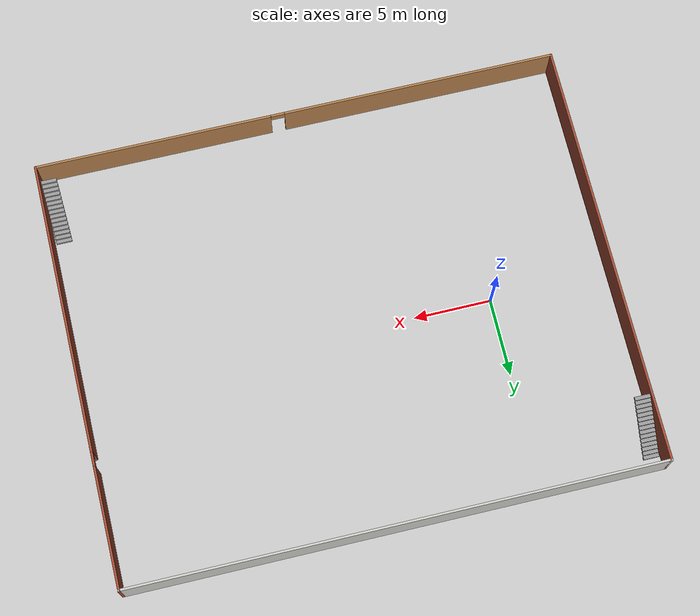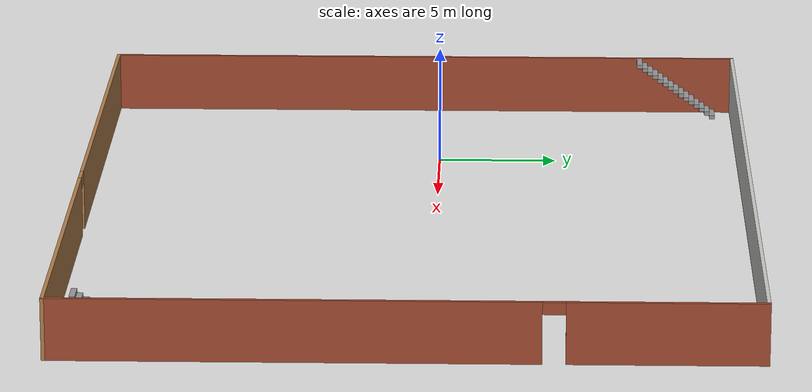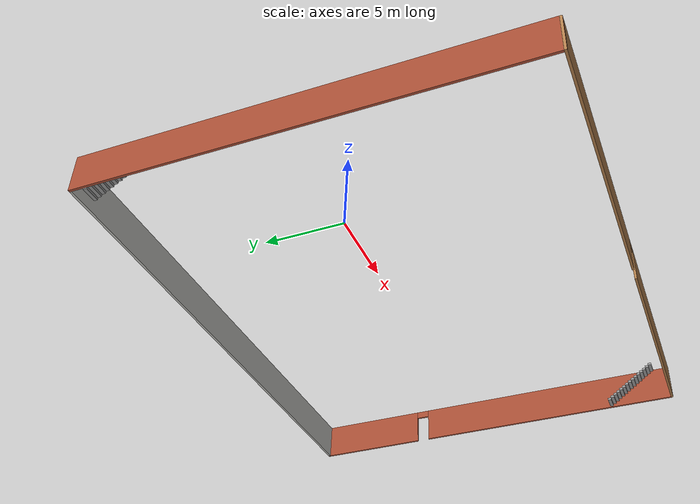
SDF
<?xml version='1.0'?>
<sdf version='1.7'>
  <model name='warehouse_small'>
    <pose>9.32387 -0.839581 0 0 -0 0</pose>
    <link name='Stairs_0'>
      <visual name='Stairs_0_Visual_0'>
        <pose>-16.4157 12.9249 0.083333 0 -0 0</pose>
        <geometry>
          <box>
            <size>1 0.233333 0.166667</size>
          </box>
        </geometry>
        <material>
          <script>
            <uri>file://media/materials/scripts/gazebo.material</uri>
            <name>Gazebo/Grey</name>
          </script>
          <ambient>1 1 1 1</ambient>
        </material>
        <meta>
          <layer>0</layer>
        </meta>
      </visual>
      <collision name='Stairs_0_Collision_0'>
        <geometry>
          <box>
            <size>1 0.233333 0.166667</size>
          </box>
        </geometry>
        <pose>-16.4157 12.9249 0.083333 0 -0 0</pose>
      </collision>
      <visual name='Stairs_0_Visual_1'>
        <pose>-16.4157 12.6916 0.25 0 -0 0</pose>
        <geometry>
          <box>
            <size>1 0.233333 0.166667</size>
          </box>
        </geometry>
        <material>
          <script>
            <uri>file://media/materials/scripts/gazebo.material</uri>
            <name>Gazebo/Grey</name>
          </script>
          <ambient>1 1 1 1</ambient>
        </material>
        <meta>
          <layer>0</layer>
        </meta>
      </visual>
      <collision name='Stairs_0_Collision_1'>
        <geometry>
          <box>
            <size>1 0.233333 0.166667</size>
          </box>
        </geometry>
        <pose>-16.4157 12.6916 0.25 0 -0 0</pose>
      </collision>
      <visual name='Stairs_0_Visual_2'>
        <pose>-16.4157 12.4583 0.416667 0 -0 0</pose>
        <geometry>
          <box>
            <size>1 0.233333 0.166667</size>
          </box>
        </geometry>
        <material>
          <script>
            <uri>file://media/materials/scripts/gazebo.material</uri>
            <name>Gazebo/Grey</name>
          </script>
          <ambient>1 1 1 1</ambient>
        </material>
        <meta>
          <layer>0</layer>
        </meta>
      </visual>
      <collision name='Stairs_0_Collision_2'>
        <geometry>
          <box>
            <size>1 0.233333 0.166667</size>
          </box>
        </geometry>
        <pose>-16.4157 12.4583 0.416667 0 -0 0</pose>
      </collision>
      <visual name='Stairs_0_Visual_3'>
        <pose>-16.4157 12.2249 0.583333 0 -0 0</pose>
        <geometry>
          <box>
            <size>1 0.233333 0.166667</size>
          </box>
        </geometry>
        <material>
          <script>
            <uri>file://media/materials/scripts/gazebo.material</uri>
            <name>Gazebo/Grey</name>
          </script>
          <ambient>1 1 1 1</ambient>
        </material>
        <meta>
          <layer>0</layer>
        </meta>
      </visual>
      <collision name='Stairs_0_Collision_3'>
        <geometry>
          <box>
            <size>1 0.233333 0.166667</size>
          </box>
        </geometry>
        <pose>-16.4157 12.2249 0.583333 0 -0 0</pose>
      </collision>
      <visual name='Stairs_0_Visual_4'>
        <pose>-16.4157 11.9916 0.75 0 -0 0</pose>
        <geometry>
          <box>
            <size>1 0.233333 0.166667</size>
          </box>
        </geometry>
        <material>
          <script>
            <uri>file://media/materials/scripts/gazebo.material</uri>
            <name>Gazebo/Grey</name>
          </script>
          <ambient>1 1 1 1</ambient>
        </material>
        <meta>
          <layer>0</layer>
        </meta>
      </visual>
      <collision name='Stairs_0_Collision_4'>
        <geometry>
          <box>
            <size>1 0.233333 0.166667</size>
          </box>
        </geometry>
        <pose>-16.4157 11.9916 0.75 0 -0 0</pose>
      </collision>
      <visual name='Stairs_0_Visual_5'>
        <pose>-16.4157 11.7583 0.916667 0 -0 0</pose>
        <geometry>
          <box>
            <size>1 0.233333 0.166667</size>
          </box>
        </geometry>
        <material>
          <script>
            <uri>file://media/materials/scripts/gazebo.material</uri>
            <name>Gazebo/Grey</name>
          </script>
          <ambient>1 1 1 1</ambient>
        </material>
        <meta>
          <layer>0</layer>
        </meta>
      </visual>
      <collision name='Stairs_0_Collision_5'>
        <geometry>
          <box>
            <size>1 0.233333 0.166667</size>
          </box>
        </geometry>
        <pose>-16.4157 11.7583 0.916667 0 -0 0</pose>
      </collision>
      <visual name='Stairs_0_Visual_6'>
        <pose>-16.4157 11.5249 1.08333 0 -0 0</pose>
        <geometry>
          <box>
            <size>1 0.233333 0.166667</size>
          </box>
        </geometry>
        <material>
          <script>
            <uri>file://media/materials/scripts/gazebo.material</uri>
            <name>Gazebo/Grey</name>
          </script>
          <ambient>1 1 1 1</ambient>
        </material>
        <meta>
          <layer>0</layer>
        </meta>
      </visual>
      <collision name='Stairs_0_Collision_6'>
        <geometry>
          <box>
            <size>1 0.233333 0.166667</size>
          </box>
        </geometry>
        <pose>-16.4157 11.5249 1.08333 0 -0 0</pose>
      </collision>
      <visual name='Stairs_0_Visual_7'>
        <pose>-16.4157 11.2916 1.25 0 -0 0</pose>
        <geometry>
          <box>
            <size>1 0.233333 0.166667</size>
          </box>
        </geometry>
        <material>
          <script>
            <uri>file://media/materials/scripts/gazebo.material</uri>
            <name>Gazebo/Grey</name>
          </script>
          <ambient>1 1 1 1</ambient>
        </material>
        <meta>
          <layer>0</layer>
        </meta>
      </visual>
      <collision name='Stairs_0_Collision_7'>
        <geometry>
          <box>
            <size>1 0.233333 0.166667</size>
          </box>
        </geometry>
        <pose>-16.4157 11.2916 1.25 0 -0 0</pose>
      </collision>
      <visual name='Stairs_0_Visual_8'>
        <pose>-16.4157 11.0583 1.41667 0 -0 0</pose>
        <geometry>
          <box>
            <size>1 0.233333 0.166667</size>
          </box>
        </geometry>
        <material>
          <script>
            <uri>file://media/materials/scripts/gazebo.material</uri>
            <name>Gazebo/Grey</name>
          </script>
          <ambient>1 1 1 1</ambient>
        </material>
        <meta>
          <layer>0</layer>
        </meta>
      </visual>
      <collision name='Stairs_0_Collision_8'>
        <geometry>
          <box>
            <size>1 0.233333 0.166667</size>
          </box>
        </geometry>
        <pose>-16.4157 11.0583 1.41667 0 -0 0</pose>
      </collision>
      <visual name='Stairs_0_Visual_9'>
        <pose>-16.4157 10.8249 1.58333 0 -0 0</pose>
        <geometry>
          <box>
            <size>1 0.233333 0.166667</size>
          </box>
        </geometry>
        <material>
          <script>
            <uri>file://media/materials/scripts/gazebo.material</uri>
            <name>Gazebo/Grey</name>
          </script>
          <ambient>1 1 1 1</ambient>
        </material>
        <meta>
          <layer>0</layer>
        </meta>
      </visual>
      <collision name='Stairs_0_Collision_9'>
        <geometry>
          <box>
            <size>1 0.233333 0.166667</size>
          </box>
        </geometry>
        <pose>-16.4157 10.8249 1.58333 0 -0 0</pose>
      </collision>
      <visual name='Stairs_0_Visual_10'>
        <pose>-16.4157 10.5916 1.75 0 -0 0</pose>
        <geometry>
          <box>
            <size>1 0.233333 0.166667</size>
          </box>
        </geometry>
        <material>
          <script>
            <uri>file://media/materials/scripts/gazebo.material</uri>
            <name>Gazebo/Grey</name>
          </script>
          <ambient>1 1 1 1</ambient>
        </material>
        <meta>
          <layer>0</layer>
        </meta>
      </visual>
      <collision name='Stairs_0_Collision_10'>
        <geometry>
          <box>
            <size>1 0.233333 0.166667</size>
          </box>
        </geometry>
        <pose>-16.4157 10.5916 1.75 0 -0 0</pose>
      </collision>
      <visual name='Stairs_0_Visual_11'>
        <pose>-16.4157 10.3583 1.91667 0 -0 0</pose>
        <geometry>
          <box>
            <size>1 0.233333 0.166667</size>
          </box>
        </geometry>
        <material>
          <script>
            <uri>file://media/materials/scripts/gazebo.material</uri>
            <name>Gazebo/Grey</name>
          </script>
          <ambient>1 1 1 1</ambient>
        </material>
        <meta>
          <layer>0</layer>
        </meta>
      </visual>
      <collision name='Stairs_0_Collision_11'>
        <geometry>
          <box>
            <size>1 0.233333 0.166667</size>
          </box>
        </geometry>
        <pose>-16.4157 10.3583 1.91667 0 -0 0</pose>
      </collision>
      <visual name='Stairs_0_Visual_12'>
        <pose>-16.4157 10.1249 2.08333 0 -0 0</pose>
        <geometry>
          <box>
            <size>1 0.233333 0.166667</size>
          </box>
        </geometry>
        <material>
          <script>
            <uri>file://media/materials/scripts/gazebo.material</uri>
            <name>Gazebo/Grey</name>
          </script>
          <ambient>1 1 1 1</ambient>
        </material>
        <meta>
          <layer>0</layer>
        </meta>
      </visual>
      <collision name='Stairs_0_Collision_12'>
        <geometry>
          <box>
            <size>1 0.233333 0.166667</size>
          </box>
        </geometry>
        <pose>-16.4157 10.1249 2.08333 0 -0 0</pose>
      </collision>
      <visual name='Stairs_0_Visual_13'>
        <pose>-16.4157 9.8916 2.25 0 -0 0</pose>
        <geometry>
          <box>
            <size>1 0.233333 0.166667</size>
          </box>
        </geometry>
        <material>
          <script>
            <uri>file://media/materials/scripts/gazebo.material</uri>
            <name>Gazebo/Grey</name>
          </script>
          <ambient>1 1 1 1</ambient>
        </material>
        <meta>
          <layer>0</layer>
        </meta>
      </visual>
      <collision name='Stairs_0_Collision_13'>
        <geometry>
          <box>
            <size>1 0.233333 0.166667</size>
          </box>
        </geometry>
        <pose>-16.4157 9.8916 2.25 0 -0 0</pose>
      </collision>
      <visual name='Stairs_0_Visual_14'>
        <pose>-16.4157 9.65827 2.41667 0 -0 0</pose>
        <geometry>
          <box>
            <size>1 0.233333 0.166667</size>
          </box>
        </geometry>
        <material>
          <script>
            <uri>file://media/materials/scripts/gazebo.material</uri>
            <name>Gazebo/Grey</name>
          </script>
          <ambient>1 1 1 1</ambient>
        </material>
        <meta>
          <layer>0</layer>
        </meta>
      </visual>
      <collision name='Stairs_0_Collision_14'>
        <geometry>
          <box>
            <size>1 0.233333 0.166667</size>
          </box>
        </geometry>
        <pose>-16.4157 9.65827 2.41667 0 -0 0</pose>
      </collision>
    </link>
    <link name='Stairs_1'>
      <visual name='Stairs_1_Visual_0'>
        <pose>16.377 -9.40593 0.083333 0 -0 0</pose>
        <geometry>
          <box>
            <size>1 0.233333 0.166667</size>
          </box>
        </geometry>
        <material>
          <script>
            <uri>file://media/materials/scripts/gazebo.material</uri>
            <name>Gazebo/Grey</name>
          </script>
          <ambient>1 1 1 1</ambient>
        </material>
        <meta>
          <layer>0</layer>
        </meta>
      </visual>
      <collision name='Stairs_1_Collision_0'>
        <geometry>
          <box>
            <size>1 0.233333 0.166667</size>
          </box>
        </geometry>
        <pose>16.377 -9.40593 0.083333 0 -0 0</pose>
      </collision>
      <visual name='Stairs_1_Visual_1'>
        <pose>16.377 -9.63927 0.25 0 -0 0</pose>
        <geometry>
          <box>
            <size>1 0.233333 0.166667</size>
          </box>
        </geometry>
        <material>
          <script>
            <uri>file://media/materials/scripts/gazebo.material</uri>
            <name>Gazebo/Grey</name>
          </script>
          <ambient>1 1 1 1</ambient>
        </material>
        <meta>
          <layer>0</layer>
        </meta>
      </visual>
      <collision name='Stairs_1_Collision_1'>
        <geometry>
          <box>
            <size>1 0.233333 0.166667</size>
          </box>
        </geometry>
        <pose>16.377 -9.63927 0.25 0 -0 0</pose>
      </collision>
      <visual name='Stairs_1_Visual_2'>
        <pose>16.377 -9.8726 0.416667 0 -0 0</pose>
        <geometry>
          <box>
            <size>1 0.233333 0.166667</size>
          </box>
        </geometry>
        <material>
          <script>
            <uri>file://media/materials/scripts/gazebo.material</uri>
            <name>Gazebo/Grey</name>
          </script>
          <ambient>1 1 1 1</ambient>
        </material>
        <meta>
          <layer>0</layer>
        </meta>
      </visual>
      <collision name='Stairs_1_Collision_2'>
        <geometry>
          <box>
            <size>1 0.233333 0.166667</size>
          </box>
        </geometry>
        <pose>16.377 -9.8726 0.416667 0 -0 0</pose>
      </collision>
      <visual name='Stairs_1_Visual_3'>
        <pose>16.377 -10.1059 0.583333 0 -0 0</pose>
        <geometry>
          <box>
            <size>1 0.233333 0.166667</size>
          </box>
        </geometry>
        <material>
          <script>
            <uri>file://media/materials/scripts/gazebo.material</uri>
            <name>Gazebo/Grey</name>
          </script>
          <ambient>1 1 1 1</ambient>
        </material>
        <meta>
          <layer>0</layer>
        </meta>
      </visual>
      <collision name='Stairs_1_Collision_3'>
        <geometry>
          <box>
            <size>1 0.233333 0.166667</size>
          </box>
        </geometry>
        <pose>16.377 -10.1059 0.583333 0 -0 0</pose>
      </collision>
      <visual name='Stairs_1_Visual_4'>
        <pose>16.377 -10.3393 0.75 0 -0 0</pose>
        <geometry>
          <box>
            <size>1 0.233333 0.166667</size>
          </box>
        </geometry>
        <material>
          <script>
            <uri>file://media/materials/scripts/gazebo.material</uri>
            <name>Gazebo/Grey</name>
          </script>
          <ambient>1 1 1 1</ambient>
        </material>
        <meta>
          <layer>0</layer>
        </meta>
      </visual>
      <collision name='Stairs_1_Collision_4'>
        <geometry>
          <box>
            <size>1 0.233333 0.166667</size>
          </box>
        </geometry>
        <pose>16.377 -10.3393 0.75 0 -0 0</pose>
      </collision>
      <visual name='Stairs_1_Visual_5'>
        <pose>16.377 -10.5726 0.916667 0 -0 0</pose>
        <geometry>
          <box>
            <size>1 0.233333 0.166667</size>
          </box>
        </geometry>
        <material>
          <script>
            <uri>file://media/materials/scripts/gazebo.material</uri>
            <name>Gazebo/Grey</name>
          </script>
          <ambient>1 1 1 1</ambient>
        </material>
        <meta>
          <layer>0</layer>
        </meta>
      </visual>
      <collision name='Stairs_1_Collision_5'>
        <geometry>
          <box>
            <size>1 0.233333 0.166667</size>
          </box>
        </geometry>
        <pose>16.377 -10.5726 0.916667 0 -0 0</pose>
      </collision>
      <visual name='Stairs_1_Visual_6'>
        <pose>16.377 -10.8059 1.08333 0 -0 0</pose>
        <geometry>
          <box>
            <size>1 0.233333 0.166667</size>
          </box>
        </geometry>
        <material>
          <script>
            <uri>file://media/materials/scripts/gazebo.material</uri>
            <name>Gazebo/Grey</name>
          </script>
          <ambient>1 1 1 1</ambient>
        </material>
        <meta>
          <layer>0</layer>
        </meta>
      </visual>
      <collision name='Stairs_1_Collision_6'>
        <geometry>
          <box>
            <size>1 0.233333 0.166667</size>
          </box>
        </geometry>
        <pose>16.377 -10.8059 1.08333 0 -0 0</pose>
      </collision>
      <visual name='Stairs_1_Visual_7'>
        <pose>16.377 -11.0393 1.25 0 -0 0</pose>
        <geometry>
          <box>
            <size>1 0.233333 0.166667</size>
          </box>
        </geometry>
        <material>
          <script>
            <uri>file://media/materials/scripts/gazebo.material</uri>
            <name>Gazebo/Grey</name>
          </script>
          <ambient>1 1 1 1</ambient>
        </material>
        <meta>
          <layer>0</layer>
        </meta>
      </visual>
      <collision name='Stairs_1_Collision_7'>
        <geometry>
          <box>
            <size>1 0.233333 0.166667</size>
          </box>
        </geometry>
        <pose>16.377 -11.0393 1.25 0 -0 0</pose>
      </collision>
      <visual name='Stairs_1_Visual_8'>
        <pose>16.377 -11.2726 1.41667 0 -0 0</pose>
        <geometry>
          <box>
            <size>1 0.233333 0.166667</size>
          </box>
        </geometry>
        <material>
          <script>
            <uri>file://media/materials/scripts/gazebo.material</uri>
            <name>Gazebo/Grey</name>
          </script>
          <ambient>1 1 1 1</ambient>
        </material>
        <meta>
          <layer>0</layer>
        </meta>
      </visual>
      <collision name='Stairs_1_Collision_8'>
        <geometry>
          <box>
            <size>1 0.233333 0.166667</size>
          </box>
        </geometry>
        <pose>16.377 -11.2726 1.41667 0 -0 0</pose>
      </collision>
      <visual name='Stairs_1_Visual_9'>
        <pose>16.377 -11.5059 1.58333 0 -0 0</pose>
        <geometry>
          <box>
            <size>1 0.233333 0.166667</size>
          </box>
        </geometry>
        <material>
          <script>
            <uri>file://media/materials/scripts/gazebo.material</uri>
            <name>Gazebo/Grey</name>
          </script>
          <ambient>1 1 1 1</ambient>
        </material>
        <meta>
          <layer>0</layer>
        </meta>
      </visual>
      <collision name='Stairs_1_Collision_9'>
        <geometry>
          <box>
            <size>1 0.233333 0.166667</size>
          </box>
        </geometry>
        <pose>16.377 -11.5059 1.58333 0 -0 0</pose>
      </collision>
      <visual name='Stairs_1_Visual_10'>
        <pose>16.377 -11.7393 1.75 0 -0 0</pose>
        <geometry>
          <box>
            <size>1 0.233333 0.166667</size>
          </box>
        </geometry>
        <material>
          <script>
            <uri>file://media/materials/scripts/gazebo.material</uri>
            <name>Gazebo/Grey</name>
          </script>
          <ambient>1 1 1 1</ambient>
        </material>
        <meta>
          <layer>0</layer>
        </meta>
      </visual>
      <collision name='Stairs_1_Collision_10'>
        <geometry>
          <box>
            <size>1 0.233333 0.166667</size>
          </box>
        </geometry>
        <pose>16.377 -11.7393 1.75 0 -0 0</pose>
      </collision>
      <visual name='Stairs_1_Visual_11'>
        <pose>16.377 -11.9726 1.91667 0 -0 0</pose>
        <geometry>
          <box>
            <size>1 0.233333 0.166667</size>
          </box>
        </geometry>
        <material>
          <script>
            <uri>file://media/materials/scripts/gazebo.material</uri>
            <name>Gazebo/Grey</name>
          </script>
          <ambient>1 1 1 1</ambient>
        </material>
        <meta>
          <layer>0</layer>
        </meta>
      </visual>
      <collision name='Stairs_1_Collision_11'>
        <geometry>
          <box>
            <size>1 0.233333 0.166667</size>
          </box>
        </geometry>
        <pose>16.377 -11.9726 1.91667 0 -0 0</pose>
      </collision>
      <visual name='Stairs_1_Visual_12'>
        <pose>16.377 -12.2059 2.08333 0 -0 0</pose>
        <geometry>
          <box>
            <size>1 0.233333 0.166667</size>
          </box>
        </geometry>
        <material>
          <script>
            <uri>file://media/materials/scripts/gazebo.material</uri>
            <name>Gazebo/Grey</name>
          </script>
          <ambient>1 1 1 1</ambient>
        </material>
        <meta>
          <layer>0</layer>
        </meta>
      </visual>
      <collision name='Stairs_1_Collision_12'>
        <geometry>
          <box>
            <size>1 0.233333 0.166667</size>
          </box>
        </geometry>
        <pose>16.377 -12.2059 2.08333 0 -0 0</pose>
      </collision>
      <visual name='Stairs_1_Visual_13'>
        <pose>16.377 -12.4393 2.25 0 -0 0</pose>
        <geometry>
          <box>
            <size>1 0.233333 0.166667</size>
          </box>
        </geometry>
        <material>
          <script>
            <uri>file://media/materials/scripts/gazebo.material</uri>
            <name>Gazebo/Grey</name>
          </script>
          <ambient>1 1 1 1</ambient>
        </material>
        <meta>
          <layer>0</layer>
        </meta>
      </visual>
      <collision name='Stairs_1_Collision_13'>
        <geometry>
          <box>
            <size>1 0.233333 0.166667</size>
          </box>
        </geometry>
        <pose>16.377 -12.4393 2.25 0 -0 0</pose>
      </collision>
      <visual name='Stairs_1_Visual_14'>
        <pose>16.377 -12.6726 2.41667 0 -0 0</pose>
        <geometry>
          <box>
            <size>1 0.233333 0.166667</size>
          </box>
        </geometry>
        <material>
          <script>
            <uri>file://media/materials/scripts/gazebo.material</uri>
            <name>Gazebo/Grey</name>
          </script>
          <ambient>1 1 1 1</ambient>
        </material>
        <meta>
          <layer>0</layer>
        </meta>
      </visual>
      <collision name='Stairs_1_Collision_14'>
        <geometry>
          <box>
            <size>1 0.233333 0.166667</size>
          </box>
        </geometry>
        <pose>16.377 -12.6726 2.41667 0 -0 0</pose>
      </collision>
    </link>
    <link name='Wall_6'>
      <pose>17.05 -0 0 0 -0 -1.5708</pose>
      <visual name='Wall_6_Visual_0'>
        <pose>-9.994 0 1.25 0 -0 0</pose>
        <geometry>
          <box>
            <size>7.762 0.15 2.5</size>
          </box>
        </geometry>
        <material>
          <script>
            <uri>file://media/materials/scripts/gazebo.material</uri>
            <name>Gazebo/Bricks</name>
          </script>
          <ambient>1 1 1 1</ambient>
        </material>
        <meta>
          <layer>0</layer>
        </meta>
      </visual>
      <collision name='Wall_6_Collision_0'>
        <geometry>
          <box>
            <size>7.762 0.15 2.5</size>
          </box>
        </geometry>
        <pose>-9.994 0 1.25 0 -0 0</pose>
      </collision>
      <visual name='Wall_6_Visual_1'>
        <pose>4.331 0 1.25 0 -0 0</pose>
        <geometry>
          <box>
            <size>19.088 0.15 2.5</size>
          </box>
        </geometry>
        <material>
          <script>
            <uri>file://media/materials/scripts/gazebo.material</uri>
            <name>Gazebo/Bricks</name>
          </script>
          <ambient>1 1 1 1</ambient>
        </material>
        <meta>
          <layer>0</layer>
        </meta>
      </visual>
      <collision name='Wall_6_Collision_1'>
        <geometry>
          <box>
            <size>19.088 0.15 2.5</size>
          </box>
        </geometry>
        <pose>4.331 0 1.25 0 -0 0</pose>
      </collision>
      <visual name='Wall_6_Visual_2'>
        <pose>-5.663 0 2.25 0 -0 0</pose>
        <geometry>
          <box>
            <size>0.9 0.15 0.5</size>
          </box>
        </geometry>
        <material>
          <script>
            <uri>file://media/materials/scripts/gazebo.material</uri>
            <name>Gazebo/Bricks</name>
          </script>
          <ambient>1 1 1 1</ambient>
        </material>
        <meta>
          <layer>0</layer>
        </meta>
      </visual>
      <collision name='Wall_6_Collision_2'>
        <geometry>
          <box>
            <size>0.9 0.15 0.5</size>
          </box>
        </geometry>
        <pose>-5.663 0 2.25 0 -0 0</pose>
      </collision>
    </link>
    <link name='Wall_7'>
      <pose>1e-06 -13.8 0 0 -0 3.14159</pose>
      <visual name='Wall_7_Visual_0'>
        <pose>-9.38963 0 1.25 0 -0 0</pose>
        <geometry>
          <box>
            <size>15.4707 0.15 2.5</size>
          </box>
        </geometry>
        <material>
          <script>
            <uri>file://media/materials/scripts/gazebo.material</uri>
            <name>Gazebo/Wood</name>
          </script>
          <ambient>1 1 1 1</ambient>
        </material>
        <meta>
          <layer>0</layer>
        </meta>
      </visual>
      <collision name='Wall_7_Collision_0'>
        <geometry>
          <box>
            <size>15.4707 0.15 2.5</size>
          </box>
        </geometry>
        <pose>-9.38963 0 1.25 0 -0 0</pose>
      </collision>
      <visual name='Wall_7_Visual_1'>
        <pose>8.18537 0 1.25 0 -0 0</pose>
        <geometry>
          <box>
            <size>17.8793 0.15 2.5</size>
          </box>
        </geometry>
        <material>
          <script>
            <uri>file://media/materials/scripts/gazebo.material</uri>
            <name>Gazebo/Wood</name>
          </script>
          <ambient>1 1 1 1</ambient>
        </material>
        <meta>
          <layer>0</layer>
        </meta>
      </visual>
      <collision name='Wall_7_Collision_1'>
        <geometry>
          <box>
            <size>17.8793 0.15 2.5</size>
          </box>
        </geometry>
        <pose>8.18537 0 1.25 0 -0 0</pose>
      </collision>
      <visual name='Wall_7_Visual_2'>
        <pose>-1.20426 0 2.25 0 -0 0</pose>
        <geometry>
          <box>
            <size>0.9 0.15 0.5</size>
          </box>
        </geometry>
        <material>
          <script>
            <uri>file://media/materials/scripts/gazebo.material</uri>
            <name>Gazebo/Wood</name>
          </script>
          <ambient>1 1 1 1</ambient>
        </material>
        <meta>
          <layer>0</layer>
        </meta>
      </visual>
      <collision name='Wall_7_Collision_2'>
        <geometry>
          <box>
            <size>0.9 0.15 0.5</size>
          </box>
        </geometry>
        <pose>-1.20426 0 2.25 0 -0 0</pose>
      </collision>
    </link>
    <link name='Wall_8'>
      <collision name='Wall_8_Collision'>
        <geometry>
          <box>
            <size>27.75 0.15 2.5</size>
          </box>
        </geometry>
        <pose>0 0 1.25 0 -0 0</pose>
      </collision>
      <visual name='Wall_8_Visual'>
        <pose>0 0 1.25 0 -0 0</pose>
        <geometry>
          <box>
            <size>27.75 0.15 2.5</size>
          </box>
        </geometry>
        <material>
          <script>
            <uri>file://media/materials/scripts/gazebo.material</uri>
            <name>Gazebo/Bricks</name>
          </script>
          <ambient>1 1 1 1</ambient>
        </material>
        <meta>
          <layer>0</layer>
        </meta>
      </visual>
      <pose>-17.05 -0 0 0 -0 1.5708</pose>
    </link>
    <link name='Wall_9'>
      <collision name='Wall_9_Collision'>
        <geometry>
          <box>
            <size>34.25 0.15 2.5</size>
          </box>
        </geometry>
        <pose>0 0 1.25 0 -0 0</pose>
      </collision>
      <visual name='Wall_9_Visual'>
        <pose>0 0 1.25 0 -0 0</pose>
        <geometry>
          <box>
            <size>34.25 0.15 2.5</size>
          </box>
        </geometry>
        <material>
          <script>
            <uri>file://media/materials/scripts/gazebo.material</uri>
            <name>Gazebo/CeilingTiled</name>
          </script>
          <ambient>1 1 1 1</ambient>
        </material>
        <meta>
          <layer>0</layer>
        </meta>
      </visual>
      <pose>1e-06 13.8 0 0 -0 0</pose>
    </link>
    <static>1</static>
  </model>
</sdf>
